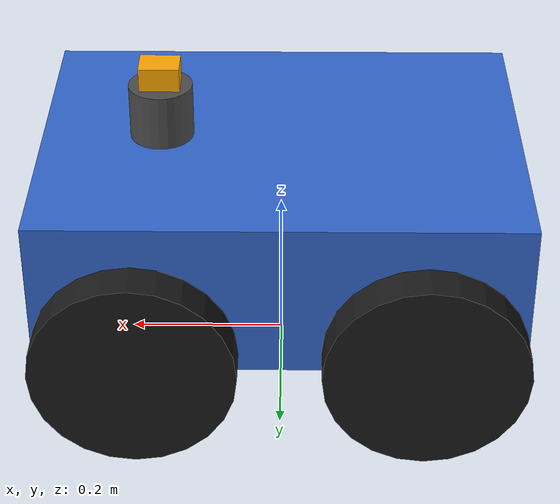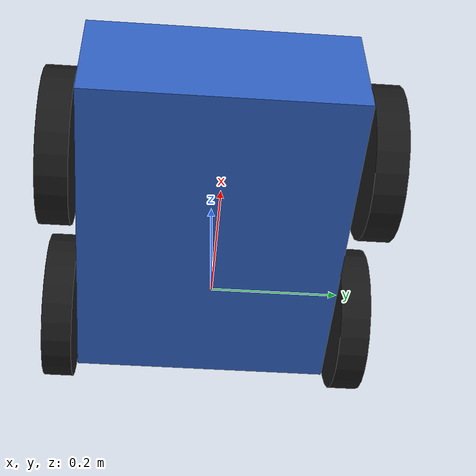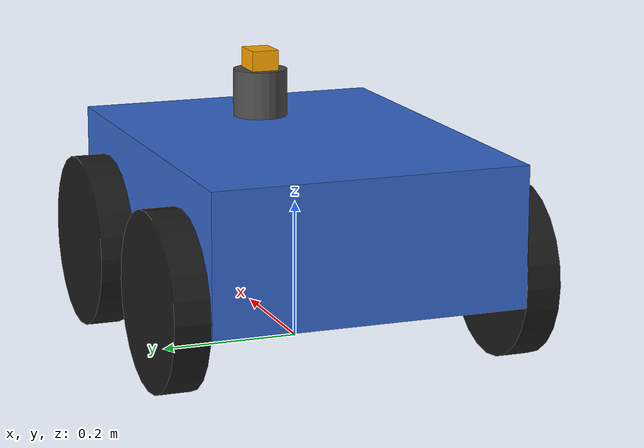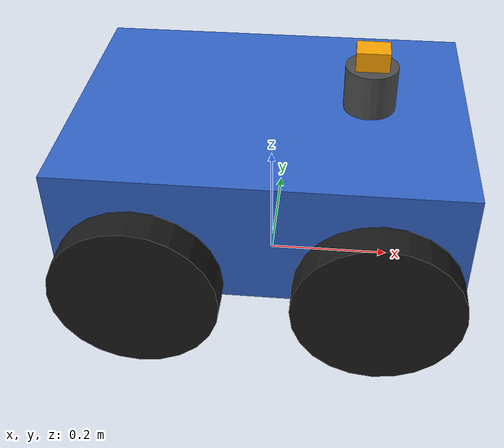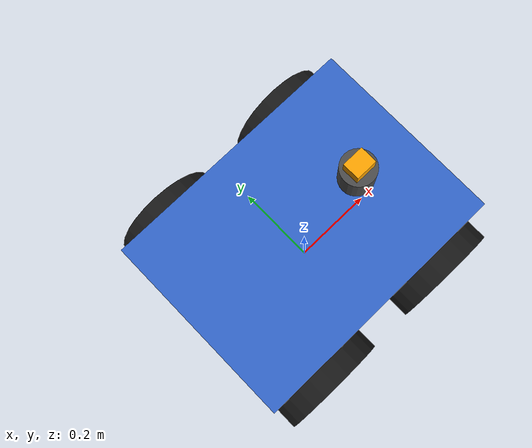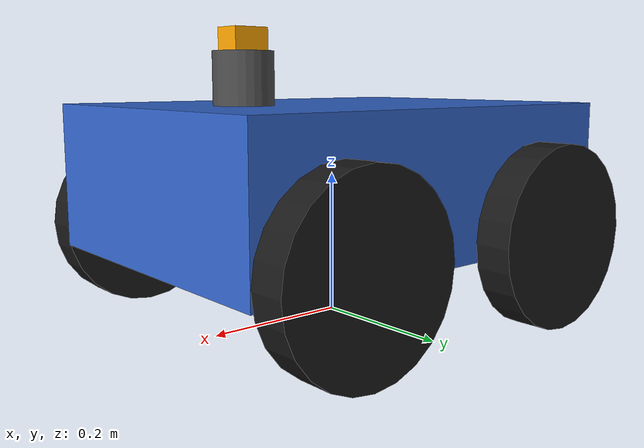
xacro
<?xml version="1.0"?>

<robot xmlns:xacro="http://www.ros.org/wiki/xacro"
       name="delivery_robot">

    <!-- Base Link -->
    <link name="base_link">

        <visual>
            <origin xyz="0 0 0.20"/>
            <geometry>
                <box size="0.60 0.45 0.20"/>
            </geometry>

            <material name="blue">
                <color rgba="0.2 0.4 0.8 1.0"/>
            </material>
        </visual>

        <collision>
            <origin xyz="0 0 0.20"/>
            <geometry>
                <box size="0.60 0.45 0.20"/>
            </geometry>
        </collision>

        <inertial>
            <origin xyz="0 0 0.20"/>
            <mass value="20.0"/>

            <inertia
                ixx="0.50"
                ixy="0.0"
                ixz="0.0"
                iyy="0.80"
                iyz="0.0"
                izz="1.00"/>

        </inertial>

    </link>

<!-- ================= Wheel Macro ================= -->
<xacro:macro name="wheel" params="wheel_name joint_name x y z">

    <link name="${wheel_name}">

        <visual>
            <origin xyz="0 0 0" rpy="1.5708 0 0"/>
            <geometry>
                <cylinder radius="0.125" length="0.05"/>
            </geometry>

            <material name="black">
                <color rgba="0.1 0.1 0.1 1.0"/>
            </material>
        </visual>

        <collision>
            <origin xyz="0 0 0" rpy="1.5708 0 0"/>
            <geometry>
                <cylinder radius="0.125" length="0.05"/>
            </geometry>
        </collision>

        <inertial>
            <origin xyz="0 0 0"/>
            <mass value="2.0"/>

            <inertia
                ixx="0.01"
                ixy="0.0"
                ixz="0.0"
                iyy="0.01"
                iyz="0.0"
                izz="0.01"/>
        </inertial>

    </link>

    <joint name="${joint_name}" type="continuous">

        <parent link="base_link"/>
        <child link="${wheel_name}"/>

        <origin xyz="${x} ${y} ${z}" rpy="0 0 0"/>

        <axis xyz="0 1 0"/>

    </joint>

</xacro:macro>

<!-- ================= Instantiate Wheels ================= -->

<xacro:wheel
    wheel_name="front_left_wheel"
    joint_name="front_left_wheel_joint"
    x="0.175"
    y="0.251"
    z="0.125"/>

<xacro:wheel
    wheel_name="front_right_wheel"
    joint_name="front_right_wheel_joint"
    x="0.175"
    y="-0.251"
    z="0.125"/>

<xacro:wheel
    wheel_name="rear_left_wheel"
    joint_name="rear_left_wheel_joint"
    x="-0.175"
    y="0.251"
    z="0.125"/>

<xacro:wheel
    wheel_name="rear_right_wheel"
    joint_name="rear_right_wheel_joint"
    x="-0.175"
    y="-0.251"
    z="0.125"/>

<!-- ================= LiDAR ================= -->

<link name="lidar_link">

    <visual>
        <geometry>
            <cylinder radius="0.04" length="0.07"/>
        </geometry>

        <material name="dark_gray">
            <color rgba="0.3 0.3 0.3 1"/>
        </material>
    </visual>

    <collision>
        <geometry>
            <cylinder radius="0.04" length="0.07"/>
        </geometry>
    </collision>

    <inertial>
        <origin xyz="0 0 0"/>
        <mass value="0.5"/>

        <inertia
            ixx="0.0005"
            ixy="0"
            ixz="0"
            iyy="0.0005"
            iyz="0"
            izz="0.0005"/>
    </inertial>

</link>

<link name="camera_link">

  <visual>
    <geometry>
      <box size="0.05 0.04 0.03"/>
    </geometry>

    <material name="green">
      <color rgba="1 0.65 0 1"/>
    </material>
  </visual>

  <collision>
    <geometry>
      <box size="0.05 0.04 0.03"/>
    </geometry>
  </collision>

  <inertial>
    <mass value="0.2"/>

    <origin xyz="0 0 0"/>

    <inertia
      ixx="0.0001"
      iyy="0.0001"
      izz="0.0001"
      ixy="0"
      ixz="0"
      iyz="0"/>
  </inertial>

</link>

<joint name="lidar_joint" type="fixed">

    <parent link="base_link"/>

    <child link="lidar_link"/>

    <origin xyz="0.15 0 0.335"
            rpy="0 0 0"/>

</joint>

<gazebo reference="lidar_joint">
    <preserveFixedJoint>true</preserveFixedJoint>
</gazebo>

<joint name="camera_joint" type="fixed">

  <parent link="base_link"/>
  <child link="camera_link"/>

  <origin xyz="0.15 0.0 0.385" rpy="0 0 0"/>

</joint>

<link name="camera_optical_frame"/>

<joint name="camera_optical_joint" type="fixed">
  <parent link="camera_link"/>
  <child link="camera_optical_frame"/>

  <origin xyz="0 0 0"
          rpy="-1.5708 0 -1.5708"/>
</joint>

<ros2_control name="GazeboSystem" type="system">

  <hardware>
    <plugin>gz_ros2_control/GazeboSimSystem</plugin>
  </hardware>

  <joint name="front_left_wheel_joint">
    <command_interface name="velocity"/>
    <state_interface name="position"/>
    <state_interface name="velocity"/>
  </joint>

  <joint name="front_right_wheel_joint">
    <command_interface name="velocity"/>
    <state_interface name="position"/>
    <state_interface name="velocity"/>
  </joint>

  <joint name="rear_left_wheel_joint">
    <command_interface name="velocity"/>
    <state_interface name="position"/>
    <state_interface name="velocity"/>
  </joint>

  <joint name="rear_right_wheel_joint">
    <command_interface name="velocity"/>
    <state_interface name="position"/>
    <state_interface name="velocity"/>
  </joint>

</ros2_control>

<xacro:arg name="controllers_config" default="" />

<gazebo>
  <plugin
      filename="gz_ros2_control-system"
      name="gz_ros2_control::GazeboSimROS2ControlPlugin">
    <parameters>$(arg controllers_config)</parameters>
  </plugin>
</gazebo>

<!-- ================= LiDAR Sensor ================= -->

<gazebo reference="lidar_link">
  <sensor name="lidar_sensor" type="gpu_lidar">
    <topic>/scan</topic>

    <update_rate>10</update_rate>

    <ray>
      <scan>
        <horizontal>
          <samples>360</samples>
          <resolution>1</resolution>
          <min_angle>-3.14159</min_angle>
          <max_angle>3.14159</max_angle>
        </horizontal>
      </scan>

      <range>
        <min>0.12</min>
        <max>12.0</max>
        <resolution>0.01</resolution>
      </range>
    </ray>

    <always_on>true</always_on>
    <visualize>false</visualize>
  </sensor>
</gazebo>

<!-- ================= Camera Sensor ================= -->

<gazebo reference="camera_link">

  <sensor name="camera_sensor" type="camera">

    <topic>/camera/image</topic>

    <update_rate>5</update_rate>

    <camera>

      <horizontal_fov>1.047</horizontal_fov>

      <image>
        <width>320</width>
        <height>240</height>
        <format>R8G8B8</format>
      </image>

      <clip>
        <near>0.05</near>
        <far>20.0</far>
      </clip>

    </camera>

    <always_on>true</always_on>
    <visualize>false</visualize>

  </sensor>

</gazebo>

</robot>
